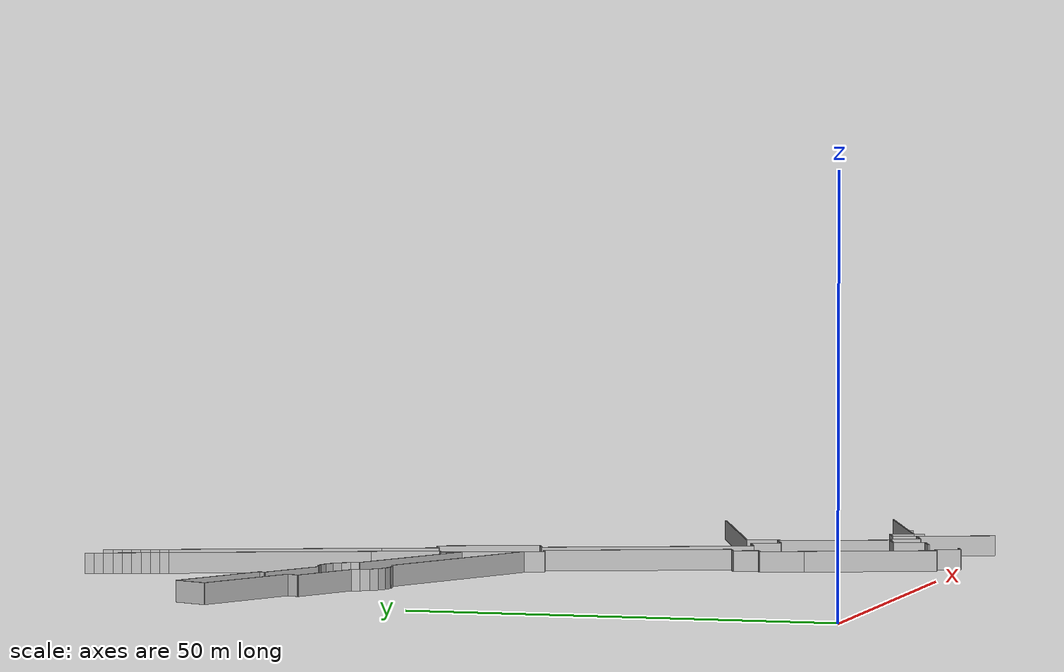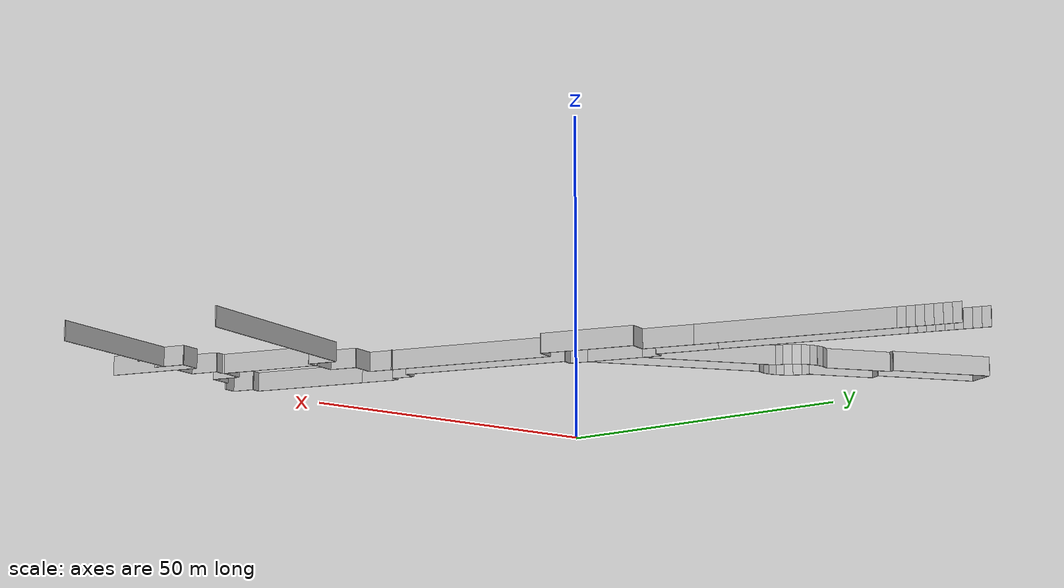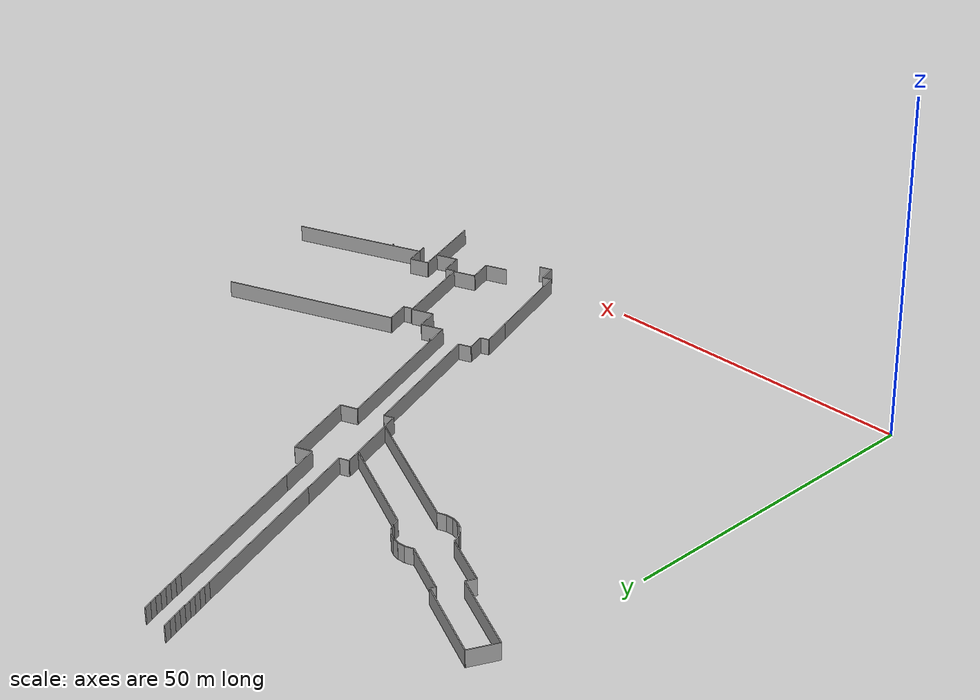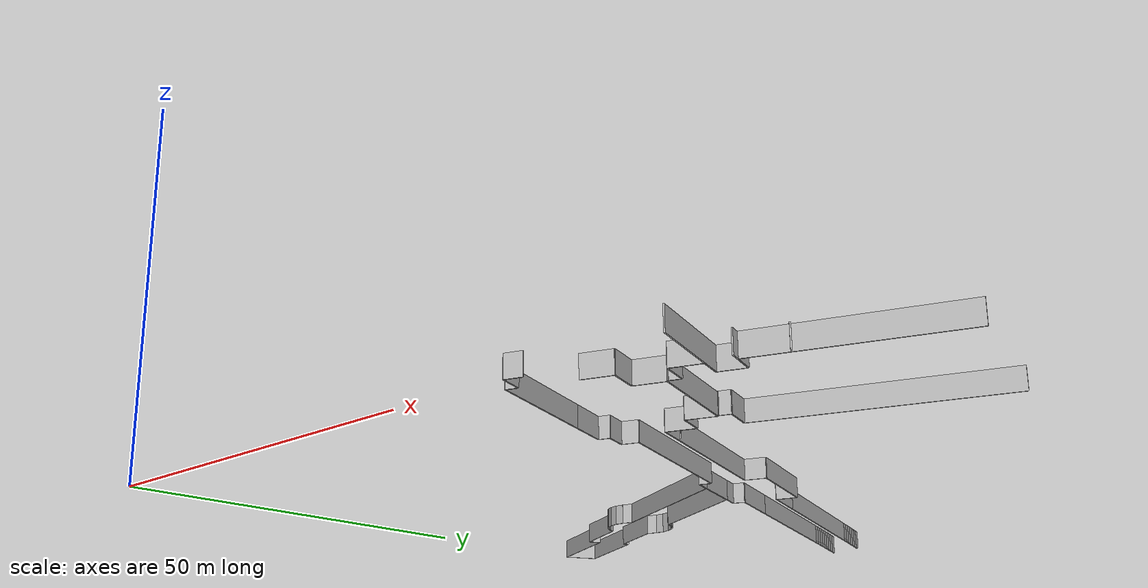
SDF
<?xml version="1.0" ?>
<sdf version="1.6">
  <model name="sps_2216">
    <pose frame="">0 0 0 0 -0 0</pose>
    <static>1</static>
    <self_collide>0</self_collide>
    <allow_auto_disable>0</allow_auto_disable>
    <link name="Wall74">
      <kinematic>0</kinematic>
      <gravity>1</gravity>
      <self_collide>0</self_collide>
      <collision name="collision">
        <geometry>
          <box>
            <size>12.4994 0.15 2.5</size>
          </box>
        </geometry>
        <pose frame="">0 0 0 0 -0 0</pose>
      </collision>
      <visual name="visual">
        <geometry>
          <box>
            <size>12.4994 0.15 2.5</size>
          </box>
        </geometry>
        <pose frame="">0 0 0 0 -0 0</pose>
        <cast_shadows>1</cast_shadows>
        <transparency>0.0</transparency>
      </visual>
      <pose frame="">54.3676 56.4584 1.25 0 -0 1.91501</pose>
    </link>
    <link name="Wall75">
      <kinematic>0</kinematic>
      <gravity>1</gravity>
      <self_collide>0</self_collide>
      <collision name="collision">
        <geometry>
          <box>
            <size>3.50995 0.15 2.5</size>
          </box>
        </geometry>
        <pose frame="">0 0 0 0 -0 0</pose>
      </collision>
      <visual name="visual">
        <geometry>
          <box>
            <size>3.50995 0.15 2.5</size>
          </box>
        </geometry>
        <pose frame="">0 0 0 0 -0 0</pose>
        <cast_shadows>1</cast_shadows>
        <transparency>0.0</transparency>
      </visual>
      <pose frame="">64.3138 26.0264 1.25 0 -0 0.344249</pose>
    </link>
    <link name="Wall76">
      <kinematic>0</kinematic>
      <gravity>1</gravity>
      <self_collide>0</self_collide>
      <collision name="collision">
        <geometry>
          <box>
            <size>3.50986 0.15 2.5</size>
          </box>
        </geometry>
        <pose frame="">0 0 0 0 -0 0</pose>
      </collision>
      <visual name="visual">
        <geometry>
          <box>
            <size>3.50986 0.15 2.5</size>
          </box>
        </geometry>
        <pose frame="">0 0 0 0 -0 0</pose>
        <cast_shadows>1</cast_shadows>
        <transparency>0.0</transparency>
      </visual>
      <pose frame="">71.5362 5.88191 1.25 0 0 -2.79726</pose>
    </link>
    <link name="Wall77">
      <kinematic>0</kinematic>
      <gravity>1</gravity>
      <self_collide>0</self_collide>
      <collision name="collision">
        <geometry>
          <box>
            <size>3.92009 0.15 2.5</size>
          </box>
        </geometry>
        <pose frame="">0 0 0 0 -0 0</pose>
      </collision>
      <visual name="visual">
        <geometry>
          <box>
            <size>3.92009 0.15 2.5</size>
          </box>
        </geometry>
        <pose frame="">0 0 0 0 -0 0</pose>
        <cast_shadows>1</cast_shadows>
        <transparency>0.0</transparency>
      </visual>
      <pose frame="">72.5265 8.31932 1.25 0 0 -1.22648</pose>
    </link>
    <link name="Wall78">
      <kinematic>0</kinematic>
      <gravity>1</gravity>
      <self_collide>0</self_collide>
      <collision name="collision">
        <geometry>
          <box>
            <size>4.30404 0.15 2.5</size>
          </box>
        </geometry>
        <pose frame="">0 0 0 0 -0 0</pose>
      </collision>
      <visual name="visual">
        <geometry>
          <box>
            <size>4.30404 0.15 2.5</size>
          </box>
        </geometry>
        <pose frame="">0 0 0 0 -0 0</pose>
        <cast_shadows>1</cast_shadows>
        <transparency>0.0</transparency>
      </visual>
      <pose frame="">83.7432 11.1054 1.25 0 0 -1.22655</pose>
    </link>
    <link name="Wall147">
      <kinematic>0</kinematic>
      <gravity>1</gravity>
      <self_collide>0</self_collide>
      <collision name="collision">
        <geometry>
          <box>
            <size>16.0744 0.15 2.5</size>
          </box>
        </geometry>
        <pose frame="">0 0 0 0 -0 0</pose>
      </collision>
      <visual name="visual">
        <geometry>
          <box>
            <size>16.0744 0.15 2.5</size>
          </box>
        </geometry>
        <pose frame="">0 0 0 0 -0 0</pose>
        <cast_shadows>1</cast_shadows>
        <transparency>0.0</transparency>
      </visual>
      <pose frame="">60.1209 10.3274 1.25 0 -0 1.91503</pose>
    </link>
    <link name="Wall148">
      <kinematic>0</kinematic>
      <gravity>1</gravity>
      <self_collide>0</self_collide>
      <collision name="collision">
        <geometry>
          <box>
            <size>5.32562 0.15 2.5</size>
          </box>
        </geometry>
        <pose frame="">0 0 0 0 -0 0</pose>
      </collision>
      <visual name="visual">
        <geometry>
          <box>
            <size>5.32562 0.15 2.5</size>
          </box>
        </geometry>
        <pose frame="">0 0 0 0 -0 0</pose>
        <cast_shadows>1</cast_shadows>
        <transparency>0.0</transparency>
      </visual>
      <pose frame="">56.5099 20.3997 1.25 0 -0 1.91503</pose>
    </link>
    <link name="Wall149">
      <kinematic>0</kinematic>
      <gravity>1</gravity>
      <self_collide>0</self_collide>
      <collision name="collision">
        <geometry>
          <box>
            <size>3.69961 0.15 2.5</size>
          </box>
        </geometry>
        <pose frame="">0 0 0 0 -0 0</pose>
      </collision>
      <visual name="visual">
        <geometry>
          <box>
            <size>3.69961 0.15 2.5</size>
          </box>
        </geometry>
        <pose frame="">0 0 0 0 -0 0</pose>
        <cast_shadows>1</cast_shadows>
        <transparency>0.0</transparency>
      </visual>
      <pose frame="">66.5901 24.8774 1.25 0 0 -1.22654</pose>
    </link>
    <link name="Wall150">
      <kinematic>0</kinematic>
      <gravity>1</gravity>
      <self_collide>0</self_collide>
      <collision name="collision">
        <geometry>
          <box>
            <size>3.50029 0.15 2.5</size>
          </box>
        </geometry>
        <pose frame="">0 0 0 0 -0 0</pose>
      </collision>
      <visual name="visual">
        <geometry>
          <box>
            <size>3.50029 0.15 2.5</size>
          </box>
        </geometry>
        <pose frame="">0 0 0 0 -0 0</pose>
        <cast_shadows>1</cast_shadows>
        <transparency>0.0</transparency>
      </visual>
      <pose frame="">68.862 23.7266 1.25 0 -0 0.344145</pose>
    </link>
    <link name="Wall151">
      <kinematic>0</kinematic>
      <gravity>1</gravity>
      <self_collide>0</self_collide>
      <collision name="collision">
        <geometry>
          <box>
            <size>0.310551 0.15 2.5</size>
          </box>
        </geometry>
        <pose frame="">0 0 0 0 -0 0</pose>
      </collision>
      <visual name="visual">
        <geometry>
          <box>
            <size>0.310551 0.15 2.5</size>
          </box>
        </geometry>
        <pose frame="">0 0 0 0 -0 0</pose>
        <cast_shadows>1</cast_shadows>
        <transparency>0.0</transparency>
      </visual>
      <pose frame="">75.2999 11.2784 1.25 0 -0 2.70185</pose>
    </link>
    <link name="Wall152">
      <kinematic>0</kinematic>
      <gravity>1</gravity>
      <self_collide>0</self_collide>
      <collision name="collision">
        <geometry>
          <box>
            <size>3.70068 0.15 2.5</size>
          </box>
        </geometry>
        <pose frame="">0 0 0 0 -0 0</pose>
      </collision>
      <visual name="visual">
        <geometry>
          <box>
            <size>3.70068 0.15 2.5</size>
          </box>
        </geometry>
        <pose frame="">0 0 0 0 -0 0</pose>
        <cast_shadows>1</cast_shadows>
        <transparency>0.0</transparency>
      </visual>
      <pose frame="">77.27 9.90242 1.25 0 -0 1.91517</pose>
    </link>
    <link name="Wall255">
      <kinematic>0</kinematic>
      <gravity>1</gravity>
      <self_collide>0</self_collide>
      <collision name="collision">
        <geometry>
          <box>
            <size>6.85096 0.15 2.5</size>
          </box>
        </geometry>
        <pose frame="">0 0 0 0 -0 0</pose>
      </collision>
      <visual name="visual">
        <geometry>
          <box>
            <size>6.85096 0.15 2.5</size>
          </box>
        </geometry>
        <pose frame="">0 0 0 0 -0 0</pose>
        <cast_shadows>1</cast_shadows>
        <transparency>0.0</transparency>
      </visual>
      <pose frame="">48.5984 64.6685 1.25 0 -0 1.91498</pose>
    </link>
    <link name="Wall256">
      <kinematic>0</kinematic>
      <gravity>1</gravity>
      <self_collide>0</self_collide>
      <collision name="collision">
        <geometry>
          <box>
            <size>25.6927 0.15 2.5</size>
          </box>
        </geometry>
        <pose frame="">0 0 0 0 -0 0</pose>
      </collision>
      <visual name="visual">
        <geometry>
          <box>
            <size>25.6927 0.15 2.5</size>
          </box>
        </geometry>
        <pose frame="">0 0 0 0 -0 0</pose>
        <cast_shadows>1</cast_shadows>
        <transparency>0.0</transparency>
      </visual>
      <pose frame="">43.1078 79.986 1.25 0 -0 1.91498</pose>
    </link>
    <link name="Wall257">
      <kinematic>0</kinematic>
      <gravity>1</gravity>
      <self_collide>0</self_collide>
      <collision name="collision">
        <geometry>
          <box>
            <size>1.34945 0.15 2.5</size>
          </box>
        </geometry>
        <pose frame="">0 0 0 0 -0 0</pose>
      </collision>
      <visual name="visual">
        <geometry>
          <box>
            <size>1.34945 0.15 2.5</size>
          </box>
        </geometry>
        <pose frame="">0 0 0 0 -0 0</pose>
        <cast_shadows>1</cast_shadows>
        <transparency>0.0</transparency>
      </visual>
      <pose frame="">56.2463 23.1341 1.25 0 -0 0.344408</pose>
    </link>
    <link name="Wall258">
      <kinematic>0</kinematic>
      <gravity>1</gravity>
      <self_collide>0</self_collide>
      <collision name="collision">
        <geometry>
          <box>
            <size>1.34956 0.15 2.5</size>
          </box>
        </geometry>
        <pose frame="">0 0 0 0 -0 0</pose>
      </collision>
      <visual name="visual">
        <geometry>
          <box>
            <size>1.34956 0.15 2.5</size>
          </box>
        </geometry>
        <pose frame="">0 0 0 0 -0 0</pose>
        <cast_shadows>1</cast_shadows>
        <transparency>0.0</transparency>
      </visual>
      <pose frame="">63.4685 2.98939 1.25 0 0 -2.79736</pose>
    </link>
    <link name="Wall319">
      <kinematic>0</kinematic>
      <gravity>1</gravity>
      <self_collide>0</self_collide>
      <collision name="collision">
        <geometry>
          <box>
            <size>0.311482 0.15 2.5</size>
          </box>
        </geometry>
        <pose frame="">0 0 0 0 -0 0</pose>
      </collision>
      <visual name="visual">
        <geometry>
          <box>
            <size>0.311482 0.15 2.5</size>
          </box>
        </geometry>
        <pose frame="">0 0 0 0 -0 0</pose>
        <cast_shadows>1</cast_shadows>
        <transparency>0.0</transparency>
      </visual>
      <pose frame="">70.6502 24.2503 1.25 0 0 -0.443316</pose>
    </link>
    <link name="Wall320">
      <kinematic>0</kinematic>
      <gravity>1</gravity>
      <self_collide>0</self_collide>
      <collision name="collision">
        <geometry>
          <box>
            <size>1.27988 0.15 2.5</size>
          </box>
        </geometry>
        <pose frame="">0 0 0 0 -0 0</pose>
      </collision>
      <visual name="visual">
        <geometry>
          <box>
            <size>1.27988 0.15 2.5</size>
          </box>
        </geometry>
        <pose frame="">0 0 0 0 -0 0</pose>
        <cast_shadows>1</cast_shadows>
        <transparency>0.0</transparency>
      </visual>
      <pose frame="">76.0429 11.4282 1.25 0 0 -2.79745</pose>
    </link>
    <link name="Wall384">
      <kinematic>0</kinematic>
      <gravity>1</gravity>
      <self_collide>0</self_collide>
      <collision name="collision">
        <geometry>
          <box>
            <size>25.7532 0.15 2.5</size>
          </box>
        </geometry>
        <pose frame="">0 0 0 0 -0 0</pose>
      </collision>
      <visual name="visual">
        <geometry>
          <box>
            <size>25.7532 0.15 2.5</size>
          </box>
        </geometry>
        <pose frame="">0 0 0 0 -0 0</pose>
        <cast_shadows>1</cast_shadows>
        <transparency>0.0</transparency>
      </visual>
      <pose frame="">58.3174 37.5557 1.25 0 -0 1.91494</pose>
    </link>
    <link name="Wall385">
      <kinematic>0</kinematic>
      <gravity>1</gravity>
      <self_collide>0</self_collide>
      <collision name="collision">
        <geometry>
          <box>
            <size>3.05064 0.15 2.5</size>
          </box>
        </geometry>
        <pose frame="">0 0 0 0 -0 0</pose>
      </collision>
      <visual name="visual">
        <geometry>
          <box>
            <size>3.05064 0.15 2.5</size>
          </box>
        </geometry>
        <pose frame="">0 0 0 0 -0 0</pose>
        <cast_shadows>1</cast_shadows>
        <transparency>0.0</transparency>
      </visual>
      <pose frame="">64.6185 1.78129 1.25 0 -0 1.91506</pose>
    </link>
    <link name="Wall478">
      <kinematic>0</kinematic>
      <gravity>1</gravity>
      <self_collide>0</self_collide>
      <collision name="collision">
        <geometry>
          <box>
            <size>1.50045 0.15 2.5</size>
          </box>
        </geometry>
        <pose frame="">0 0 0 0 -0 0</pose>
      </collision>
      <visual name="visual">
        <geometry>
          <box>
            <size>1.50045 0.15 2.5</size>
          </box>
        </geometry>
        <pose frame="">0 0 0 0 -0 0</pose>
        <cast_shadows>1</cast_shadows>
        <transparency>0.0</transparency>
      </visual>
      <pose frame="">45.1512 59.7939 1.25 0 0 -2.79733</pose>
    </link>
    <link name="Wall479">
      <kinematic>0</kinematic>
      <gravity>1</gravity>
      <self_collide>0</self_collide>
      <collision name="collision">
        <geometry>
          <box>
            <size>2.66038 0.15 2.5</size>
          </box>
        </geometry>
        <pose frame="">0 0 0 0 -0 0</pose>
      </collision>
      <visual name="visual">
        <geometry>
          <box>
            <size>2.66038 0.15 2.5</size>
          </box>
        </geometry>
        <pose frame="">0 0 0 0 -0 0</pose>
        <cast_shadows>1</cast_shadows>
        <transparency>0.0</transparency>
      </visual>
      <pose frame="">51.0064 61.8927 1.25 0 0 -2.79745</pose>
    </link>
    <link name="Wall480">
      <kinematic>0</kinematic>
      <gravity>1</gravity>
      <self_collide>0</self_collide>
      <collision name="collision">
        <geometry>
          <box>
            <size>2.65976 0.15 2.5</size>
          </box>
        </geometry>
        <pose frame="">0 0 0 0 -0 0</pose>
      </collision>
      <visual name="visual">
        <geometry>
          <box>
            <size>2.65976 0.15 2.5</size>
          </box>
        </geometry>
        <pose frame="">0 0 0 0 -0 0</pose>
        <cast_shadows>1</cast_shadows>
        <transparency>0.0</transparency>
      </visual>
      <pose frame="">55.2248 50.1263 1.25 0 -0 0.344372</pose>
    </link>
    <link name="Wall481">
      <kinematic>0</kinematic>
      <gravity>1</gravity>
      <self_collide>0</self_collide>
      <collision name="collision">
        <geometry>
          <box>
            <size>0.100527 0.15 2.5</size>
          </box>
        </geometry>
        <pose frame="">0 0 0 0 -0 0</pose>
      </collision>
      <visual name="visual">
        <geometry>
          <box>
            <size>0.100527 0.15 2.5</size>
          </box>
        </geometry>
        <pose frame="">0 0 0 0 -0 0</pose>
        <cast_shadows>1</cast_shadows>
        <transparency>0.0</transparency>
      </visual>
      <pose frame="">61.8742 28.8163 1.25 0 0 -2.79661</pose>
    </link>
    <link name="Wall482">
      <kinematic>0</kinematic>
      <gravity>1</gravity>
      <self_collide>0</self_collide>
      <collision name="collision">
        <geometry>
          <box>
            <size>3.49962 0.15 2.5</size>
          </box>
        </geometry>
        <pose frame="">0 0 0 0 -0 0</pose>
      </collision>
      <visual name="visual">
        <geometry>
          <box>
            <size>3.49962 0.15 2.5</size>
          </box>
        </geometry>
        <pose frame="">0 0 0 0 -0 0</pose>
        <cast_shadows>1</cast_shadows>
        <transparency>0.0</transparency>
      </visual>
      <pose frame="">73.5121 10.7544 1.25 0 0 -2.79762</pose>
    </link>
    <link name="Wall483">
      <kinematic>0</kinematic>
      <gravity>1</gravity>
      <self_collide>0</self_collide>
      <collision name="collision">
        <geometry>
          <box>
            <size>0.572816 0.15 2.5</size>
          </box>
        </geometry>
        <pose frame="">0 0 0 0 -0 0</pose>
      </collision>
      <visual name="visual">
        <geometry>
          <box>
            <size>0.572816 0.15 2.5</size>
          </box>
        </geometry>
        <pose frame="">0 0 0 0 -0 0</pose>
        <cast_shadows>1</cast_shadows>
        <transparency>0.0</transparency>
      </visual>
      <pose frame="">88.6548 11.7267 1.25 0 0 -0.940551</pose>
    </link>
    <link name="Wall573">
      <kinematic>0</kinematic>
      <gravity>1</gravity>
      <self_collide>0</self_collide>
      <collision name="collision">
        <geometry>
          <box>
            <size>2.49952 0.15 2.5</size>
          </box>
        </geometry>
        <pose frame="">0 0 0 0 -0 0</pose>
      </collision>
      <visual name="visual">
        <geometry>
          <box>
            <size>2.49952 0.15 2.5</size>
          </box>
        </geometry>
        <pose frame="">0 0 0 0 -0 0</pose>
        <cast_shadows>1</cast_shadows>
        <transparency>0.0</transparency>
      </visual>
      <pose frame="">44.8669 58.3643 1.25 0 0 -1.22644</pose>
    </link>
    <link name="Wall574">
      <kinematic>0</kinematic>
      <gravity>1</gravity>
      <self_collide>0</self_collide>
      <collision name="collision">
        <geometry>
          <box>
            <size>24.2062 0.15 2.5</size>
          </box>
        </geometry>
        <pose frame="">0 0 0 0 -0 0</pose>
      </collision>
      <visual name="visual">
        <geometry>
          <box>
            <size>24.2062 0.15 2.5</size>
          </box>
        </geometry>
        <pose frame="">0 0 0 0 -0 0</pose>
        <cast_shadows>1</cast_shadows>
        <transparency>0.0</transparency>
      </visual>
      <pose frame="">38.9609 79.2863 1.25 0 0 -1.2266</pose>
    </link>
    <link name="Wall575">
      <kinematic>0</kinematic>
      <gravity>1</gravity>
      <self_collide>0</self_collide>
      <collision name="collision">
        <geometry>
          <box>
            <size>8.33487 0.15 2.5</size>
          </box>
        </geometry>
        <pose frame="">0 0 0 0 -0 0</pose>
      </collision>
      <visual name="visual">
        <geometry>
          <box>
            <size>8.33487 0.15 2.5</size>
          </box>
        </geometry>
        <pose frame="">0 0 0 0 -0 0</pose>
        <cast_shadows>1</cast_shadows>
        <transparency>0.0</transparency>
      </visual>
      <pose frame="">44.4512 63.9701 1.25 0 0 -1.2266</pose>
    </link>
    <link name="Wall576">
      <kinematic>0</kinematic>
      <gravity>1</gravity>
      <self_collide>0</self_collide>
      <collision name="collision">
        <geometry>
          <box>
            <size>22.7026 0.15 2.5</size>
          </box>
        </geometry>
        <pose frame="">0 0 0 0 -0 0</pose>
      </collision>
      <visual name="visual">
        <geometry>
          <box>
            <size>22.7026 0.15 2.5</size>
          </box>
        </geometry>
        <pose frame="">0 0 0 0 -0 0</pose>
        <cast_shadows>1</cast_shadows>
        <transparency>0.0</transparency>
      </visual>
      <pose frame="">53.9053 37.5939 1.25 0 0 -1.22667</pose>
    </link>
    <link name="Wall577">
      <kinematic>0</kinematic>
      <gravity>1</gravity>
      <self_collide>0</self_collide>
      <collision name="collision">
        <geometry>
          <box>
            <size>12.6719 0.15 2.5</size>
          </box>
        </geometry>
        <pose frame="">0 0 0 0 -0 0</pose>
      </collision>
      <visual name="visual">
        <geometry>
          <box>
            <size>12.6719 0.15 2.5</size>
          </box>
        </geometry>
        <pose frame="">0 0 0 0 -0 0</pose>
        <cast_shadows>1</cast_shadows>
        <transparency>0.0</transparency>
      </visual>
      <pose frame="">82.3311 6.15446 1.25 0 0 -1.22655</pose>
    </link>
    <link name="Wall651">
      <kinematic>0</kinematic>
      <gravity>1</gravity>
      <self_collide>0</self_collide>
      <collision name="collision">
        <geometry>
          <box>
            <size>2.50062 0.15 2.5</size>
          </box>
        </geometry>
        <pose frame="">0 0 0 0 -0 0</pose>
      </collision>
      <visual name="visual">
        <geometry>
          <box>
            <size>2.50062 0.15 2.5</size>
          </box>
        </geometry>
        <pose frame="">0 0 0 0 -0 0</pose>
        <cast_shadows>1</cast_shadows>
        <transparency>0.0</transparency>
      </visual>
      <pose frame="">48.2418 48.9508 1.25 0 0 -1.22644</pose>
    </link>
    <link name="Wall652">
      <kinematic>0</kinematic>
      <gravity>1</gravity>
      <self_collide>0</self_collide>
      <collision name="collision">
        <geometry>
          <box>
            <size>1.49967 0.15 2.5</size>
          </box>
        </geometry>
        <pose frame="">0 0 0 0 -0 0</pose>
      </collision>
      <visual name="visual">
        <geometry>
          <box>
            <size>1.49967 0.15 2.5</size>
          </box>
        </geometry>
        <pose frame="">0 0 0 0 -0 0</pose>
        <cast_shadows>1</cast_shadows>
        <transparency>0.0</transparency>
      </visual>
      <pose frame="">49.3697 48.0268 1.25 0 -0 0.344018</pose>
    </link>
    <link name="Wall653">
      <kinematic>0</kinematic>
      <gravity>1</gravity>
      <self_collide>0</self_collide>
      <collision name="collision">
        <geometry>
          <box>
            <size>3.04972 0.15 2.5</size>
          </box>
        </geometry>
        <pose frame="">0 0 0 0 -0 0</pose>
      </collision>
      <visual name="visual">
        <geometry>
          <box>
            <size>3.04972 0.15 2.5</size>
          </box>
        </geometry>
        <pose frame="">0 0 0 0 -0 0</pose>
        <cast_shadows>1</cast_shadows>
        <transparency>0.0</transparency>
      </visual>
      <pose frame="">56.3671 24.7974 1.25 0 -0 1.91487</pose>
    </link>
    <link name="Wall654">
      <kinematic>0</kinematic>
      <gravity>1</gravity>
      <self_collide>0</self_collide>
      <collision name="collision">
        <geometry>
          <box>
            <size>1.99966 0.15 2.5</size>
          </box>
        </geometry>
        <pose frame="">0 0 0 0 -0 0</pose>
      </collision>
      <visual name="visual">
        <geometry>
          <box>
            <size>1.99966 0.15 2.5</size>
          </box>
        </geometry>
        <pose frame="">0 0 0 0 -0 0</pose>
        <cast_shadows>1</cast_shadows>
        <transparency>0.0</transparency>
      </visual>
      <pose frame="">56.7938 26.5705 1.25 0 -0 0.344445</pose>
    </link>
    <link name="Wall655">
      <kinematic>0</kinematic>
      <gravity>1</gravity>
      <self_collide>0</self_collide>
      <collision name="collision">
        <geometry>
          <box>
            <size>1.99972 0.15 2.5</size>
          </box>
        </geometry>
        <pose frame="">0 0 0 0 -0 0</pose>
      </collision>
      <visual name="visual">
        <geometry>
          <box>
            <size>1.99972 0.15 2.5</size>
          </box>
        </geometry>
        <pose frame="">0 0 0 0 -0 0</pose>
        <cast_shadows>1</cast_shadows>
        <transparency>0.0</transparency>
      </visual>
      <pose frame="">66.0744 0.683181 1.25 0 0 -2.79706</pose>
    </link>
    <link name="Wall673">
      <kinematic>0</kinematic>
      <gravity>1</gravity>
      <self_collide>0</self_collide>
      <collision name="collision">
        <geometry>
          <box>
            <size>23.2666 0.15 2.5</size>
          </box>
        </geometry>
        <pose frame="">0 0 0 0 -0 0</pose>
      </collision>
      <visual name="visual">
        <geometry>
          <box>
            <size>23.2666 0.15 2.5</size>
          </box>
        </geometry>
        <pose frame="">0 0 0 0 -0 0</pose>
        <cast_shadows>1</cast_shadows>
        <transparency>0.0</transparency>
      </visual>
      <pose frame="">37.3008 55.0963 1.25 0 -0 2.70031</pose>
    </link>
    <link name="Wall674">
      <kinematic>0</kinematic>
      <gravity>1</gravity>
      <self_collide>0</self_collide>
      <collision name="collision">
        <geometry>
          <box>
            <size>1.35791 0.15 2.5</size>
          </box>
        </geometry>
        <pose frame="">0 0 0 0 -0 0</pose>
      </collision>
      <visual name="visual">
        <geometry>
          <box>
            <size>1.35791 0.15 2.5</size>
          </box>
        </geometry>
        <pose frame="">0 0 0 0 -0 0</pose>
        <cast_shadows>1</cast_shadows>
        <transparency>0.0</transparency>
      </visual>
      <pose frame="">26.1386 59.8478 1.25 0 0 -2.81612</pose>
    </link>
    <link name="Wall675">
      <kinematic>0</kinematic>
      <gravity>1</gravity>
      <self_collide>0</self_collide>
      <collision name="collision">
        <geometry>
          <box>
            <size>1.14829 0.15 2.5</size>
          </box>
        </geometry>
        <pose frame="">0 0 0 0 -0 0</pose>
      </collision>
      <visual name="visual">
        <geometry>
          <box>
            <size>1.14829 0.15 2.5</size>
          </box>
        </geometry>
        <pose frame="">0 0 0 0 -0 0</pose>
        <cast_shadows>1</cast_shadows>
        <transparency>0.0</transparency>
      </visual>
      <pose frame="">24.9217 59.6059 1.25 0 0 -3.09837</pose>
    </link>
    <link name="Wall676">
      <kinematic>0</kinematic>
      <gravity>1</gravity>
      <self_collide>0</self_collide>
      <collision name="collision">
        <geometry>
          <box>
            <size>1.14803 0.15 2.5</size>
          </box>
        </geometry>
        <pose frame="">0 0 0 0 -0 0</pose>
      </collision>
      <visual name="visual">
        <geometry>
          <box>
            <size>1.14803 0.15 2.5</size>
          </box>
        </geometry>
        <pose frame="">0 0 0 0 -0 0</pose>
        <cast_shadows>1</cast_shadows>
        <transparency>0.0</transparency>
      </visual>
      <pose frame="">23.7877 59.7054 1.25 0 -0 2.92332</pose>
    </link>
    <link name="Wall677">
      <kinematic>0</kinematic>
      <gravity>1</gravity>
      <self_collide>0</self_collide>
      <collision name="collision">
        <geometry>
          <box>
            <size>1.14817 0.15 2.5</size>
          </box>
        </geometry>
        <pose frame="">0 0 0 0 -0 0</pose>
      </collision>
      <visual name="visual">
        <geometry>
          <box>
            <size>1.14817 0.15 2.5</size>
          </box>
        </geometry>
        <pose frame="">0 0 0 0 -0 0</pose>
        <cast_shadows>1</cast_shadows>
        <transparency>0.0</transparency>
      </visual>
      <pose frame="">22.7182 60.095 1.25 0 -0 2.66116</pose>
    </link>
    <link name="Wall678">
      <kinematic>0</kinematic>
      <gravity>1</gravity>
      <self_collide>0</self_collide>
      <collision name="collision">
        <geometry>
          <box>
            <size>1.14819 0.15 2.5</size>
          </box>
        </geometry>
        <pose frame="">0 0 0 0 -0 0</pose>
      </collision>
      <visual name="visual">
        <geometry>
          <box>
            <size>1.14819 0.15 2.5</size>
          </box>
        </geometry>
        <pose frame="">0 0 0 0 -0 0</pose>
        <cast_shadows>1</cast_shadows>
        <transparency>0.0</transparency>
      </visual>
      <pose frame="">21.7858 60.7482 1.25 0 -0 2.3997</pose>
    </link>
    <link name="Wall679">
      <kinematic>0</kinematic>
      <gravity>1</gravity>
      <self_collide>0</self_collide>
      <collision name="collision">
        <geometry>
          <box>
            <size>1.14827 0.15 2.5</size>
          </box>
        </geometry>
        <pose frame="">0 0 0 0 -0 0</pose>
      </collision>
      <visual name="visual">
        <geometry>
          <box>
            <size>1.14827 0.15 2.5</size>
          </box>
        </geometry>
        <pose frame="">0 0 0 0 -0 0</pose>
        <cast_shadows>1</cast_shadows>
        <transparency>0.0</transparency>
      </visual>
      <pose frame="">21.0543 61.6204 1.25 0 -0 2.13782</pose>
    </link>
    <link name="Wall680">
      <kinematic>0</kinematic>
      <gravity>1</gravity>
      <self_collide>0</self_collide>
      <collision name="collision">
        <geometry>
          <box>
            <size>1.01506 0.15 2.5</size>
          </box>
        </geometry>
        <pose frame="">0 0 0 0 -0 0</pose>
      </collision>
      <visual name="visual">
        <geometry>
          <box>
            <size>1.01506 0.15 2.5</size>
          </box>
        </geometry>
        <pose frame="">0 0 0 0 -0 0</pose>
        <cast_shadows>1</cast_shadows>
        <transparency>0.0</transparency>
      </visual>
      <pose frame="">20.5852 62.5861 1.25 0 -0 1.89298</pose>
    </link>
    <link name="Wall681">
      <kinematic>0</kinematic>
      <gravity>1</gravity>
      <self_collide>0</self_collide>
      <collision name="collision">
        <geometry>
          <box>
            <size>8.98615 0.15 2.5</size>
          </box>
        </geometry>
        <pose frame="">0 0 0 0 -0 0</pose>
      </collision>
      <visual name="visual">
        <geometry>
          <box>
            <size>8.98615 0.15 2.5</size>
          </box>
        </geometry>
        <pose frame="">0 0 0 0 -0 0</pose>
        <cast_shadows>1</cast_shadows>
        <transparency>0.0</transparency>
      </visual>
      <pose frame="">16.3616 64.986 1.25 0 -0 2.70043</pose>
    </link>
    <link name="Wall682">
      <kinematic>0</kinematic>
      <gravity>1</gravity>
      <self_collide>0</self_collide>
      <collision name="collision">
        <geometry>
          <box>
            <size>1.59989 0.15 2.5</size>
          </box>
        </geometry>
        <pose frame="">0 0 0 0 -0 0</pose>
      </collision>
      <visual name="visual">
        <geometry>
          <box>
            <size>1.59989 0.15 2.5</size>
          </box>
        </geometry>
        <pose frame="">0 0 0 0 -0 0</pose>
        <cast_shadows>1</cast_shadows>
        <transparency>0.0</transparency>
      </visual>
      <pose frame="">12.6406 67.6277 1.25 0 -0 1.12919</pose>
    </link>
    <link name="Wall683">
      <kinematic>0</kinematic>
      <gravity>1</gravity>
      <self_collide>0</self_collide>
      <collision name="collision">
        <geometry>
          <box>
            <size>13.7004 0.15 2.5</size>
          </box>
        </geometry>
        <pose frame="">0 0 0 0 -0 0</pose>
      </collision>
      <visual name="visual">
        <geometry>
          <box>
            <size>13.7004 0.15 2.5</size>
          </box>
        </geometry>
        <pose frame="">0 0 0 0 -0 0</pose>
        <cast_shadows>1</cast_shadows>
        <transparency>0.0</transparency>
      </visual>
      <pose frame="">6.78826 71.2762 1.25 0 -0 2.70038</pose>
    </link>
    <link name="Wall684">
      <kinematic>0</kinematic>
      <gravity>1</gravity>
      <self_collide>0</self_collide>
      <collision name="collision">
        <geometry>
          <box>
            <size>4.49972 0.15 2.5</size>
          </box>
        </geometry>
        <pose frame="">0 0 0 0 -0 0</pose>
      </collision>
      <visual name="visual">
        <geometry>
          <box>
            <size>4.49972 0.15 2.5</size>
          </box>
        </geometry>
        <pose frame="">0 0 0 0 -0 0</pose>
        <cast_shadows>1</cast_shadows>
        <transparency>0.0</transparency>
      </visual>
      <pose frame="">1.55486 76.2359 1.25 0 -0 1.12958</pose>
    </link>
    <link name="Wall685">
      <kinematic>0</kinematic>
      <gravity>1</gravity>
      <self_collide>0</self_collide>
      <collision name="collision">
        <geometry>
          <box>
            <size>13.7002 0.15 2.5</size>
          </box>
        </geometry>
        <pose frame="">0 0 0 0 -0 0</pose>
      </collision>
      <visual name="visual">
        <geometry>
          <box>
            <size>13.7002 0.15 2.5</size>
          </box>
        </geometry>
        <pose frame="">0 0 0 0 -0 0</pose>
        <cast_shadows>1</cast_shadows>
        <transparency>0.0</transparency>
      </visual>
      <pose frame="">8.70974 75.3451 1.25 0 0 -0.441208</pose>
    </link>
    <link name="Wall686">
      <kinematic>0</kinematic>
      <gravity>1</gravity>
      <self_collide>0</self_collide>
      <collision name="collision">
        <geometry>
          <box>
            <size>0.799504 0.15 2.5</size>
          </box>
        </geometry>
        <pose frame="">0 0 0 0 -0 0</pose>
      </collision>
      <visual name="visual">
        <geometry>
          <box>
            <size>0.799504 0.15 2.5</size>
          </box>
        </geometry>
        <pose frame="">0 0 0 0 -0 0</pose>
        <cast_shadows>1</cast_shadows>
        <transparency>0.0</transparency>
      </visual>
      <pose frame="">14.7331 72.0584 1.25 0 0 -2.01194</pose>
    </link>
    <link name="Wall687">
      <kinematic>0</kinematic>
      <gravity>1</gravity>
      <self_collide>0</self_collide>
      <collision name="collision">
        <geometry>
          <box>
            <size>8.98305 0.15 2.5</size>
          </box>
        </geometry>
        <pose frame="">0 0 0 0 -0 0</pose>
      </collision>
      <visual name="visual">
        <geometry>
          <box>
            <size>8.98305 0.15 2.5</size>
          </box>
        </geometry>
        <pose frame="">0 0 0 0 -0 0</pose>
        <cast_shadows>1</cast_shadows>
        <transparency>0.0</transparency>
      </visual>
      <pose frame="">18.6238 69.7787 1.25 0 0 -0.441254</pose>
    </link>
    <link name="Wall688">
      <kinematic>0</kinematic>
      <gravity>1</gravity>
      <self_collide>0</self_collide>
      <collision name="collision">
        <geometry>
          <box>
            <size>1.35633 0.15 2.5</size>
          </box>
        </geometry>
        <pose frame="">0 0 0 0 -0 0</pose>
      </collision>
      <visual name="visual">
        <geometry>
          <box>
            <size>1.35633 0.15 2.5</size>
          </box>
        </geometry>
        <pose frame="">0 0 0 0 -0 0</pose>
        <cast_shadows>1</cast_shadows>
        <transparency>0.0</transparency>
      </visual>
      <pose frame="">23.3277 68.0773 1.25 0 -0 0.325394</pose>
    </link>
    <link name="Wall689">
      <kinematic>0</kinematic>
      <gravity>1</gravity>
      <self_collide>0</self_collide>
      <collision name="collision">
        <geometry>
          <box>
            <size>1.14811 0.15 2.5</size>
          </box>
        </geometry>
        <pose frame="">0 0 0 0 -0 0</pose>
      </collision>
      <visual name="visual">
        <geometry>
          <box>
            <size>1.14811 0.15 2.5</size>
          </box>
        </geometry>
        <pose frame="">0 0 0 0 -0 0</pose>
        <cast_shadows>1</cast_shadows>
        <transparency>0.0</transparency>
      </visual>
      <pose frame="">24.5438 68.319 1.25 0 -0 0.0433932</pose>
    </link>
    <link name="Wall690">
      <kinematic>0</kinematic>
      <gravity>1</gravity>
      <self_collide>0</self_collide>
      <collision name="collision">
        <geometry>
          <box>
            <size>1.1483 0.15 2.5</size>
          </box>
        </geometry>
        <pose frame="">0 0 0 0 -0 0</pose>
      </collision>
      <visual name="visual">
        <geometry>
          <box>
            <size>1.1483 0.15 2.5</size>
          </box>
        </geometry>
        <pose frame="">0 0 0 0 -0 0</pose>
        <cast_shadows>1</cast_shadows>
        <transparency>0.0</transparency>
      </visual>
      <pose frame="">25.6778 68.2194 1.25 0 0 -0.2186</pose>
    </link>
    <link name="Wall691">
      <kinematic>0</kinematic>
      <gravity>1</gravity>
      <self_collide>0</self_collide>
      <collision name="collision">
        <geometry>
          <box>
            <size>1.14827 0.15 2.5</size>
          </box>
        </geometry>
        <pose frame="">0 0 0 0 -0 0</pose>
      </collision>
      <visual name="visual">
        <geometry>
          <box>
            <size>1.14827 0.15 2.5</size>
          </box>
        </geometry>
        <pose frame="">0 0 0 0 -0 0</pose>
        <cast_shadows>1</cast_shadows>
        <transparency>0.0</transparency>
      </visual>
      <pose frame="">26.7475 67.8297 1.25 0 0 -0.480146</pose>
    </link>
    <link name="Wall692">
      <kinematic>0</kinematic>
      <gravity>1</gravity>
      <self_collide>0</self_collide>
      <collision name="collision">
        <geometry>
          <box>
            <size>1.14814 0.15 2.5</size>
          </box>
        </geometry>
        <pose frame="">0 0 0 0 -0 0</pose>
      </collision>
      <visual name="visual">
        <geometry>
          <box>
            <size>1.14814 0.15 2.5</size>
          </box>
        </geometry>
        <pose frame="">0 0 0 0 -0 0</pose>
        <cast_shadows>1</cast_shadows>
        <transparency>0.0</transparency>
      </visual>
      <pose frame="">27.6798 67.1765 1.25 0 0 -0.742156</pose>
    </link>
    <link name="Wall693">
      <kinematic>0</kinematic>
      <gravity>1</gravity>
      <self_collide>0</self_collide>
      <collision name="collision">
        <geometry>
          <box>
            <size>1.14791 0.15 2.5</size>
          </box>
        </geometry>
        <pose frame="">0 0 0 0 -0 0</pose>
      </collision>
      <visual name="visual">
        <geometry>
          <box>
            <size>1.14791 0.15 2.5</size>
          </box>
        </geometry>
        <pose frame="">0 0 0 0 -0 0</pose>
        <cast_shadows>1</cast_shadows>
        <transparency>0.0</transparency>
      </visual>
      <pose frame="">28.4111 66.3043 1.25 0 0 -1.00396</pose>
    </link>
    <link name="Wall694">
      <kinematic>0</kinematic>
      <gravity>1</gravity>
      <self_collide>0</self_collide>
      <collision name="collision">
        <geometry>
          <box>
            <size>1.01193 0.15 2.5</size>
          </box>
        </geometry>
        <pose frame="">0 0 0 0 -0 0</pose>
      </collision>
      <visual name="visual">
        <geometry>
          <box>
            <size>1.01193 0.15 2.5</size>
          </box>
        </geometry>
        <pose frame="">0 0 0 0 -0 0</pose>
        <cast_shadows>1</cast_shadows>
        <transparency>0.0</transparency>
      </visual>
      <pose frame="">28.879 65.34 1.25 0 0 -1.24968</pose>
    </link>
    <link name="Wall695">
      <kinematic>0</kinematic>
      <gravity>1</gravity>
      <self_collide>0</self_collide>
      <collision name="collision">
        <geometry>
          <box>
            <size>17.9702 0.15 2.5</size>
          </box>
        </geometry>
        <pose frame="">0 0 0 0 -0 0</pose>
      </collision>
      <visual name="visual">
        <geometry>
          <box>
            <size>17.9702 0.15 2.5</size>
          </box>
        </geometry>
        <pose frame="">0 0 0 0 -0 0</pose>
        <cast_shadows>1</cast_shadows>
        <transparency>0.0</transparency>
      </visual>
      <pose frame="">37.1637 61.0239 1.25 0 0 -0.441094</pose>
    </link>
    <link name="Wall696">
      <kinematic>0</kinematic>
      <gravity>1</gravity>
      <self_collide>0</self_collide>
      <collision name="collision">
        <geometry>
          <box>
            <size>7.50008 0.15 2.5</size>
          </box>
        </geometry>
        <pose frame="">0 0 0 0 -0 0</pose>
      </collision>
      <visual name="visual">
        <geometry>
          <box>
            <size>7.50008 0.15 2.5</size>
          </box>
        </geometry>
        <pose frame="">0 0 0 0 -0 0</pose>
        <cast_shadows>1</cast_shadows>
        <transparency>0.0</transparency>
      </visual>
      <pose frame="">46.5543 53.6578 1.25 0 0 -1.2266</pose>
    </link>
    <link name="Wall2685">
      <kinematic>0</kinematic>
      <gravity>1</gravity>
      <self_collide>0</self_collide>
      <collision name="collision">
        <geometry>
          <box>
            <size>13.7808 0.15 2.5</size>
          </box>
        </geometry>
        <pose frame="">0 0 0 0 -0 0</pose>
      </collision>
      <visual name="visual">
        <geometry>
          <box>
            <size>13.7808 0.15 2.5</size>
          </box>
        </geometry>
        <pose frame="">0 0 0 0 -0 0</pose>
        <cast_shadows>1</cast_shadows>
        <transparency>0.0</transparency>
      </visual>
      <pose frame="">72.8345 17.8308 1.25 0 -0 1.91497</pose>
    </link>
    <link name="Wall2686">
      <kinematic>0</kinematic>
      <gravity>1</gravity>
      <self_collide>0</self_collide>
      <collision name="collision">
        <geometry>
          <box>
            <size>0.311482 0.15 2.5</size>
          </box>
        </geometry>
        <pose frame="">0 0 0 0 -0 0</pose>
      </collision>
      <visual name="visual">
        <geometry>
          <box>
            <size>0.311482 0.15 2.5</size>
          </box>
        </geometry>
        <pose frame="">0 0 0 0 -0 0</pose>
        <cast_shadows>1</cast_shadows>
        <transparency>0.0</transparency>
      </visual>
      <pose frame="">70.6502 24.2503 1.25 0 0 -0.443316</pose>
    </link>
    <link name="Wall2687">
      <kinematic>0</kinematic>
      <gravity>1</gravity>
      <self_collide>0</self_collide>
      <collision name="collision">
        <geometry>
          <box>
            <size>1.27928 0.15 2.5</size>
          </box>
        </geometry>
        <pose frame="">0 0 0 0 -0 0</pose>
      </collision>
      <visual name="visual">
        <geometry>
          <box>
            <size>1.27928 0.15 2.5</size>
          </box>
        </geometry>
        <pose frame="">0 0 0 0 -0 0</pose>
        <cast_shadows>1</cast_shadows>
        <transparency>0.0</transparency>
      </visual>
      <pose frame="">71.3928 24.3997 1.25 0 -0 0.344821</pose>
    </link>
    <link name="Wall2688">
      <kinematic>0</kinematic>
      <gravity>1</gravity>
      <self_collide>0</self_collide>
      <collision name="collision">
        <geometry>
          <box>
            <size>3.91934 0.15 2.5</size>
          </box>
        </geometry>
        <pose frame="">0 0 0 0 -0 0</pose>
      </collision>
      <visual name="visual">
        <geometry>
          <box>
            <size>3.91934 0.15 2.5</size>
          </box>
        </geometry>
        <pose frame="">0 0 0 0 -0 0</pose>
        <cast_shadows>1</cast_shadows>
        <transparency>0.0</transparency>
      </visual>
      <pose frame="">71.3337 26.4607 1.25 0 -0 1.9149</pose>
    </link>
    <link name="Wall2689">
      <kinematic>0</kinematic>
      <gravity>1</gravity>
      <self_collide>0</self_collide>
      <collision name="collision">
        <geometry>
          <box>
            <size>27.5504 0.15 2.5</size>
          </box>
        </geometry>
        <pose frame="">0 0 0 0 -0 0</pose>
      </collision>
      <visual name="visual">
        <geometry>
          <box>
            <size>27.5504 0.15 2.5</size>
          </box>
        </geometry>
        <pose frame="">0 0 0 0 -0 0</pose>
        <cast_shadows>1</cast_shadows>
        <transparency>0.0</transparency>
      </visual>
      <pose frame="">83.6395 32.9547 1.25 0 -0 0.344265</pose>
    </link>
    <link name="Wall2691">
      <kinematic>0</kinematic>
      <gravity>1</gravity>
      <self_collide>0</self_collide>
      <collision name="collision">
        <geometry>
          <box>
            <size>21.0515 0.15 2.5</size>
          </box>
        </geometry>
        <pose frame="">0 0 0 0 -0 0</pose>
      </collision>
      <visual name="visual">
        <geometry>
          <box>
            <size>21.0515 0.15 2.5</size>
          </box>
        </geometry>
        <pose frame="">0 0 0 0 -0 0</pose>
        <cast_shadows>1</cast_shadows>
        <transparency>0.0</transparency>
      </visual>
      <pose frame="">93.9206 13.9067 1.25 0 0 -2.79732</pose>
    </link>
    <link name="Wall2692">
      <kinematic>0</kinematic>
      <gravity>1</gravity>
      <self_collide>0</self_collide>
      <collision name="collision">
        <geometry>
          <box>
            <size>2.95011 0.15 2.5</size>
          </box>
        </geometry>
        <pose frame="">0 0 0 0 -0 0</pose>
      </collision>
      <visual name="visual">
        <geometry>
          <box>
            <size>2.95011 0.15 2.5</size>
          </box>
        </geometry>
        <pose frame="">0 0 0 0 -0 0</pose>
        <cast_shadows>1</cast_shadows>
        <transparency>0.0</transparency>
      </visual>
      <pose frame="">83.5147 11.7426 1.25 0 -0 1.91504</pose>
    </link>
    <link name="Wall2693">
      <kinematic>0</kinematic>
      <gravity>1</gravity>
      <self_collide>0</self_collide>
      <collision name="collision">
        <geometry>
          <box>
            <size>3.00004 0.15 2.5</size>
          </box>
        </geometry>
        <pose frame="">0 0 0 0 -0 0</pose>
      </collision>
      <visual name="visual">
        <geometry>
          <box>
            <size>3.00004 0.15 2.5</size>
          </box>
        </geometry>
        <pose frame="">0 0 0 0 -0 0</pose>
        <cast_shadows>1</cast_shadows>
        <transparency>0.0</transparency>
      </visual>
      <pose frame="">81.6049 12.6249 1.25 0 0 -2.79735</pose>
    </link>
    <link name="Wall2694">
      <kinematic>0</kinematic>
      <gravity>1</gravity>
      <self_collide>0</self_collide>
      <collision name="collision">
        <geometry>
          <box>
            <size>2.95009 0.15 2.5</size>
          </box>
        </geometry>
        <pose frame="">0 0 0 0 -0 0</pose>
      </collision>
      <visual name="visual">
        <geometry>
          <box>
            <size>2.95009 0.15 2.5</size>
          </box>
        </geometry>
        <pose frame="">0 0 0 0 -0 0</pose>
        <cast_shadows>1</cast_shadows>
        <transparency>0.0</transparency>
      </visual>
      <pose frame="">80.6836 10.7277 1.25 0 0 -1.23158</pose>
    </link>
    <link name="Wall2695">
      <kinematic>0</kinematic>
      <gravity>1</gravity>
      <self_collide>0</self_collide>
      <collision name="collision">
        <geometry>
          <box>
            <size>3.48423 0.15 2.5</size>
          </box>
        </geometry>
        <pose frame="">0 0 0 0 -0 0</pose>
      </collision>
      <visual name="visual">
        <geometry>
          <box>
            <size>3.48423 0.15 2.5</size>
          </box>
        </geometry>
        <pose frame="">0 0 0 0 -0 0</pose>
        <cast_shadows>1</cast_shadows>
        <transparency>0.0</transparency>
      </visual>
      <pose frame="">79.5346 8.7487 1.25 0 0 -2.79732</pose>
    </link>
    <link name="Wall2696">
      <kinematic>0</kinematic>
      <gravity>1</gravity>
      <self_collide>0</self_collide>
      <collision name="collision">
        <geometry>
          <box>
            <size>3.70068 0.15 2.5</size>
          </box>
        </geometry>
        <pose frame="">0 0 0 0 -0 0</pose>
      </collision>
      <visual name="visual">
        <geometry>
          <box>
            <size>3.70068 0.15 2.5</size>
          </box>
        </geometry>
        <pose frame="">0 0 0 0 -0 0</pose>
        <cast_shadows>1</cast_shadows>
        <transparency>0.0</transparency>
      </visual>
      <pose frame="">77.27 9.90242 1.25 0 -0 1.91517</pose>
    </link>
    <link name="Wall2697">
      <kinematic>0</kinematic>
      <gravity>1</gravity>
      <self_collide>0</self_collide>
      <collision name="collision">
        <geometry>
          <box>
            <size>1.27988 0.15 2.5</size>
          </box>
        </geometry>
        <pose frame="">0 0 0 0 -0 0</pose>
      </collision>
      <visual name="visual">
        <geometry>
          <box>
            <size>1.27988 0.15 2.5</size>
          </box>
        </geometry>
        <pose frame="">0 0 0 0 -0 0</pose>
        <cast_shadows>1</cast_shadows>
        <transparency>0.0</transparency>
      </visual>
      <pose frame="">76.0429 11.4282 1.25 0 0 -2.79745</pose>
    </link>
    <link name="Wall2698">
      <kinematic>0</kinematic>
      <gravity>1</gravity>
      <self_collide>0</self_collide>
      <collision name="collision">
        <geometry>
          <box>
            <size>0.310551 0.15 2.5</size>
          </box>
        </geometry>
        <pose frame="">0 0 0 0 -0 0</pose>
      </collision>
      <visual name="visual">
        <geometry>
          <box>
            <size>0.310551 0.15 2.5</size>
          </box>
        </geometry>
        <pose frame="">0 0 0 0 -0 0</pose>
        <cast_shadows>1</cast_shadows>
        <transparency>0.0</transparency>
      </visual>
      <pose frame="">75.2999 11.2784 1.25 0 -0 2.70185</pose>
    </link>
    <link name="Wall3501">
      <kinematic>0</kinematic>
      <gravity>1</gravity>
      <self_collide>0</self_collide>
      <collision name="collision">
        <geometry>
          <box>
            <size>1.12137 0.15 2.5</size>
          </box>
        </geometry>
        <pose frame="">0 0 0 0 -0 0</pose>
      </collision>
      <visual name="visual">
        <geometry>
          <box>
            <size>1.12137 0.15 2.5</size>
          </box>
        </geometry>
        <pose frame="">0 0 0 0 -0 0</pose>
        <cast_shadows>1</cast_shadows>
        <transparency>0.0</transparency>
      </visual>
      <pose frame="">34.6871 91.2071 1.25 0 -0 1.91611</pose>
    </link>
    <link name="Wall3502">
      <kinematic>0</kinematic>
      <gravity>1</gravity>
      <self_collide>0</self_collide>
      <collision name="collision">
        <geometry>
          <box>
            <size>1.12127 0.15 2.5</size>
          </box>
        </geometry>
        <pose frame="">0 0 0 0 -0 0</pose>
      </collision>
      <visual name="visual">
        <geometry>
          <box>
            <size>1.12127 0.15 2.5</size>
          </box>
        </geometry>
        <pose frame="">0 0 0 0 -0 0</pose>
        <cast_shadows>1</cast_shadows>
        <transparency>0.0</transparency>
      </visual>
      <pose frame="">34.3069 92.262 1.25 0 -0 1.9173</pose>
    </link>
    <link name="Wall3503">
      <kinematic>0</kinematic>
      <gravity>1</gravity>
      <self_collide>0</self_collide>
      <collision name="collision">
        <geometry>
          <box>
            <size>1.12128 0.15 2.5</size>
          </box>
        </geometry>
        <pose frame="">0 0 0 0 -0 0</pose>
      </collision>
      <visual name="visual">
        <geometry>
          <box>
            <size>1.12128 0.15 2.5</size>
          </box>
        </geometry>
        <pose frame="">0 0 0 0 -0 0</pose>
        <cast_shadows>1</cast_shadows>
        <transparency>0.0</transparency>
      </visual>
      <pose frame="">33.9255 93.3164 1.25 0 -0 1.91846</pose>
    </link>
    <link name="Wall3504">
      <kinematic>0</kinematic>
      <gravity>1</gravity>
      <self_collide>0</self_collide>
      <collision name="collision">
        <geometry>
          <box>
            <size>1.12153 0.15 2.5</size>
          </box>
        </geometry>
        <pose frame="">0 0 0 0 -0 0</pose>
      </collision>
      <visual name="visual">
        <geometry>
          <box>
            <size>1.12153 0.15 2.5</size>
          </box>
        </geometry>
        <pose frame="">0 0 0 0 -0 0</pose>
        <cast_shadows>1</cast_shadows>
        <transparency>0.0</transparency>
      </visual>
      <pose frame="">33.5427 94.3705 1.25 0 -0 1.91971</pose>
    </link>
    <link name="Wall3505">
      <kinematic>0</kinematic>
      <gravity>1</gravity>
      <self_collide>0</self_collide>
      <collision name="collision">
        <geometry>
          <box>
            <size>1.12141 0.15 2.5</size>
          </box>
        </geometry>
        <pose frame="">0 0 0 0 -0 0</pose>
      </collision>
      <visual name="visual">
        <geometry>
          <box>
            <size>1.12141 0.15 2.5</size>
          </box>
        </geometry>
        <pose frame="">0 0 0 0 -0 0</pose>
        <cast_shadows>1</cast_shadows>
        <transparency>0.0</transparency>
      </visual>
      <pose frame="">33.1587 95.4242 1.25 0 -0 1.92085</pose>
    </link>
    <link name="Wall3506">
      <kinematic>0</kinematic>
      <gravity>1</gravity>
      <self_collide>0</self_collide>
      <collision name="collision">
        <geometry>
          <box>
            <size>1.12132 0.15 2.5</size>
          </box>
        </geometry>
        <pose frame="">0 0 0 0 -0 0</pose>
      </collision>
      <visual name="visual">
        <geometry>
          <box>
            <size>1.12132 0.15 2.5</size>
          </box>
        </geometry>
        <pose frame="">0 0 0 0 -0 0</pose>
        <cast_shadows>1</cast_shadows>
        <transparency>0.0</transparency>
      </visual>
      <pose frame="">32.7735 96.4773 1.25 0 -0 1.92221</pose>
    </link>
    <link name="Wall3507">
      <kinematic>0</kinematic>
      <gravity>1</gravity>
      <self_collide>0</self_collide>
      <collision name="collision">
        <geometry>
          <box>
            <size>1.12134 0.15 2.5</size>
          </box>
        </geometry>
        <pose frame="">0 0 0 0 -0 0</pose>
      </collision>
      <visual name="visual">
        <geometry>
          <box>
            <size>1.12134 0.15 2.5</size>
          </box>
        </geometry>
        <pose frame="">0 0 0 0 -0 0</pose>
        <cast_shadows>1</cast_shadows>
        <transparency>0.0</transparency>
      </visual>
      <pose frame="">32.387 97.5299 1.25 0 -0 1.92319</pose>
    </link>
    <link name="Wall3508">
      <kinematic>0</kinematic>
      <gravity>1</gravity>
      <self_collide>0</self_collide>
      <collision name="collision">
        <geometry>
          <box>
            <size>1.12148 0.15 2.5</size>
          </box>
        </geometry>
        <pose frame="">0 0 0 0 -0 0</pose>
      </collision>
      <visual name="visual">
        <geometry>
          <box>
            <size>1.12148 0.15 2.5</size>
          </box>
        </geometry>
        <pose frame="">0 0 0 0 -0 0</pose>
        <cast_shadows>1</cast_shadows>
        <transparency>0.0</transparency>
      </visual>
      <pose frame="">31.9991 98.5821 1.25 0 -0 1.92465</pose>
    </link>
    <link name="Wall3509">
      <kinematic>0</kinematic>
      <gravity>1</gravity>
      <self_collide>0</self_collide>
      <collision name="collision">
        <geometry>
          <box>
            <size>1.12142 0.15 2.5</size>
          </box>
        </geometry>
        <pose frame="">0 0 0 0 -0 0</pose>
      </collision>
      <visual name="visual">
        <geometry>
          <box>
            <size>1.12142 0.15 2.5</size>
          </box>
        </geometry>
        <pose frame="">0 0 0 0 -0 0</pose>
        <cast_shadows>1</cast_shadows>
        <transparency>0.0</transparency>
      </visual>
      <pose frame="">31.61 99.6339 1.25 0 -0 1.9256</pose>
    </link>
    <link name="Wall6435">
      <kinematic>0</kinematic>
      <gravity>1</gravity>
      <self_collide>0</self_collide>
      <collision name="collision">
        <geometry>
          <box>
            <size>1.12627 0.15 2.5</size>
          </box>
        </geometry>
        <pose frame="">0 0 0 0 -0 0</pose>
      </collision>
      <visual name="visual">
        <geometry>
          <box>
            <size>1.12627 0.15 2.5</size>
          </box>
        </geometry>
        <pose frame="">0 0 0 0 -0 0</pose>
        <cast_shadows>1</cast_shadows>
        <transparency>0.0</transparency>
      </visual>
      <pose frame="">38.5825 92.6088 1.25 0 -0 1.91604</pose>
    </link>
    <link name="Wall6436">
      <kinematic>0</kinematic>
      <gravity>1</gravity>
      <self_collide>0</self_collide>
      <collision name="collision">
        <geometry>
          <box>
            <size>1.1262 0.15 2.5</size>
          </box>
        </geometry>
        <pose frame="">0 0 0 0 -0 0</pose>
      </collision>
      <visual name="visual">
        <geometry>
          <box>
            <size>1.1262 0.15 2.5</size>
          </box>
        </geometry>
        <pose frame="">0 0 0 0 -0 0</pose>
        <cast_shadows>1</cast_shadows>
        <transparency>0.0</transparency>
      </visual>
      <pose frame="">38.2006 93.6683 1.25 0 -0 1.91745</pose>
    </link>
    <link name="Wall6437">
      <kinematic>0</kinematic>
      <gravity>1</gravity>
      <self_collide>0</self_collide>
      <collision name="collision">
        <geometry>
          <box>
            <size>1.12625 0.15 2.5</size>
          </box>
        </geometry>
        <pose frame="">0 0 0 0 -0 0</pose>
      </collision>
      <visual name="visual">
        <geometry>
          <box>
            <size>1.12625 0.15 2.5</size>
          </box>
        </geometry>
        <pose frame="">0 0 0 0 -0 0</pose>
        <cast_shadows>1</cast_shadows>
        <transparency>0.0</transparency>
      </visual>
      <pose frame="">37.8173 94.7273 1.25 0 -0 1.9187</pose>
    </link>
    <link name="Wall6438">
      <kinematic>0</kinematic>
      <gravity>1</gravity>
      <self_collide>0</self_collide>
      <collision name="collision">
        <geometry>
          <box>
            <size>1.12626 0.15 2.5</size>
          </box>
        </geometry>
        <pose frame="">0 0 0 0 -0 0</pose>
      </collision>
      <visual name="visual">
        <geometry>
          <box>
            <size>1.12626 0.15 2.5</size>
          </box>
        </geometry>
        <pose frame="">0 0 0 0 -0 0</pose>
        <cast_shadows>1</cast_shadows>
        <transparency>0.0</transparency>
      </visual>
      <pose frame="">37.4328 95.7859 1.25 0 -0 1.91968</pose>
    </link>
    <link name="Wall6439">
      <kinematic>0</kinematic>
      <gravity>1</gravity>
      <self_collide>0</self_collide>
      <collision name="collision">
        <geometry>
          <box>
            <size>1.1264 0.15 2.5</size>
          </box>
        </geometry>
        <pose frame="">0 0 0 0 -0 0</pose>
      </collision>
      <visual name="visual">
        <geometry>
          <box>
            <size>1.1264 0.15 2.5</size>
          </box>
        </geometry>
        <pose frame="">0 0 0 0 -0 0</pose>
        <cast_shadows>1</cast_shadows>
        <transparency>0.0</transparency>
      </visual>
      <pose frame="">37.047 96.8441 1.25 0 -0 1.92096</pose>
    </link>
    <link name="Wall6440">
      <kinematic>0</kinematic>
      <gravity>1</gravity>
      <self_collide>0</self_collide>
      <collision name="collision">
        <geometry>
          <box>
            <size>1.12634 0.15 2.5</size>
          </box>
        </geometry>
        <pose frame="">0 0 0 0 -0 0</pose>
      </collision>
      <visual name="visual">
        <geometry>
          <box>
            <size>1.12634 0.15 2.5</size>
          </box>
        </geometry>
        <pose frame="">0 0 0 0 -0 0</pose>
        <cast_shadows>1</cast_shadows>
        <transparency>0.0</transparency>
      </visual>
      <pose frame="">36.6601 97.9019 1.25 0 -0 1.92208</pose>
    </link>
    <link name="Wall6441">
      <kinematic>0</kinematic>
      <gravity>1</gravity>
      <self_collide>0</self_collide>
      <collision name="collision">
        <geometry>
          <box>
            <size>1.12642 0.15 2.5</size>
          </box>
        </geometry>
        <pose frame="">0 0 0 0 -0 0</pose>
      </collision>
      <visual name="visual">
        <geometry>
          <box>
            <size>1.12642 0.15 2.5</size>
          </box>
        </geometry>
        <pose frame="">0 0 0 0 -0 0</pose>
        <cast_shadows>1</cast_shadows>
        <transparency>0.0</transparency>
      </visual>
      <pose frame="">36.2719 98.9593 1.25 0 -0 1.92321</pose>
    </link>
  </model>
</sdf>
